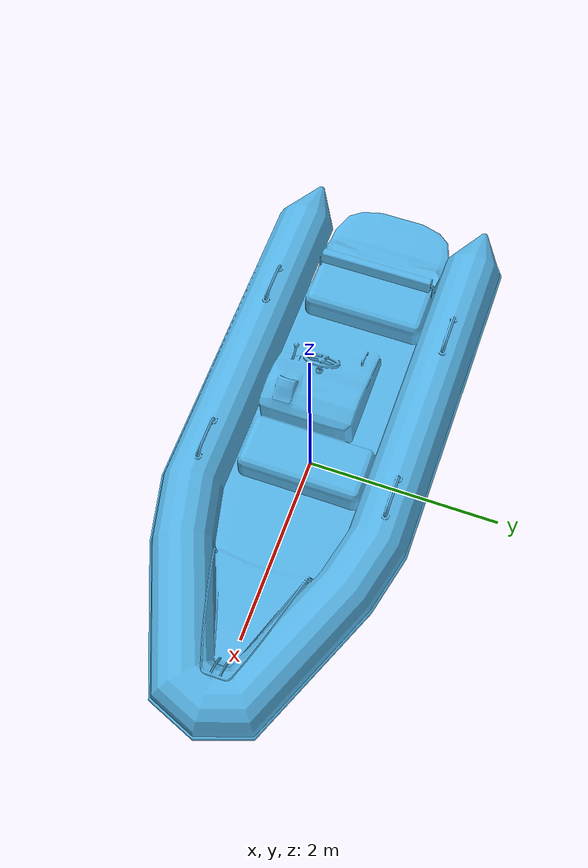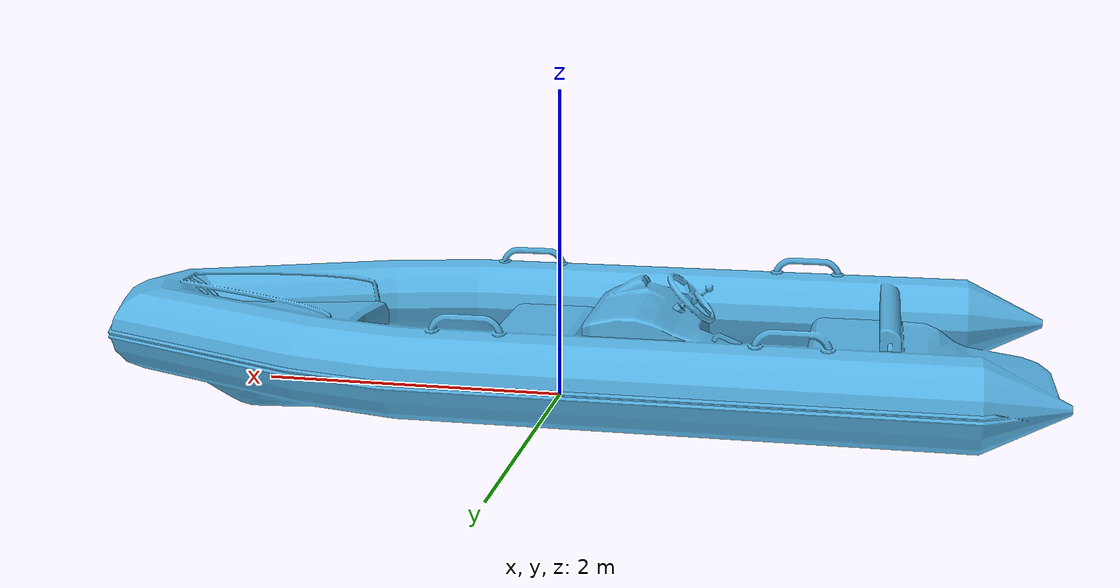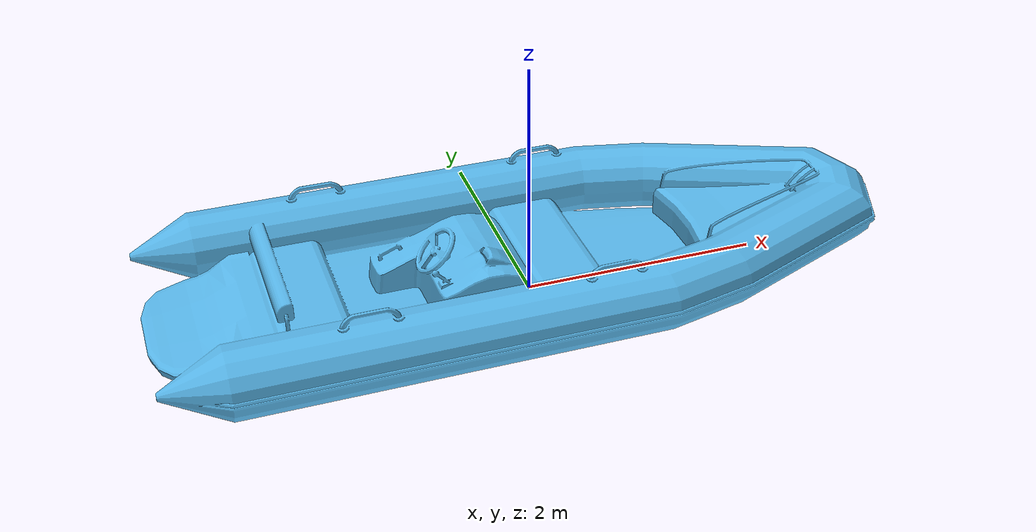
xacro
<?xml version="1.0"?>
<robot xmlns:xacro="http://ros.org/wiki/xacro" name="cora">

  <link name="base_link">
  </link>

  <joint name="dummy_joint" type="fixed">
    <parent link="base_link"/>
    <child link="dummy_link"/>
    <!-- Adjust the visual/collision to match water height -->
    <origin xyz="0 0 0.1" rpy="0 0 0"/>
  </joint>

  <link name="dummy_link">

    <visual>
      <origin xyz="0 0 0" rpy="0 0 0" />
      <geometry>
        <mesh filename="package://cora_description/models/meshes/zodiac.dae"/>
  	    <material>
         <texture filename="package://cora_description/models/materials/texture/boat_texture.png"/>
        </material>
      </geometry>
    </visual>

    <collision name="collision">
      <geometry>
        <box size="6.2 2.54 1.0" />
      </geometry>
    </collision>

    <inertial>
       <mass value="2660.0"/>
       <inertia ixx="1123.0" ixy="0.0" ixz="0.0" iyy="6261.0" iyz="0.0" izz="7152.0"/>
    </inertial>
  </link>

</robot>
